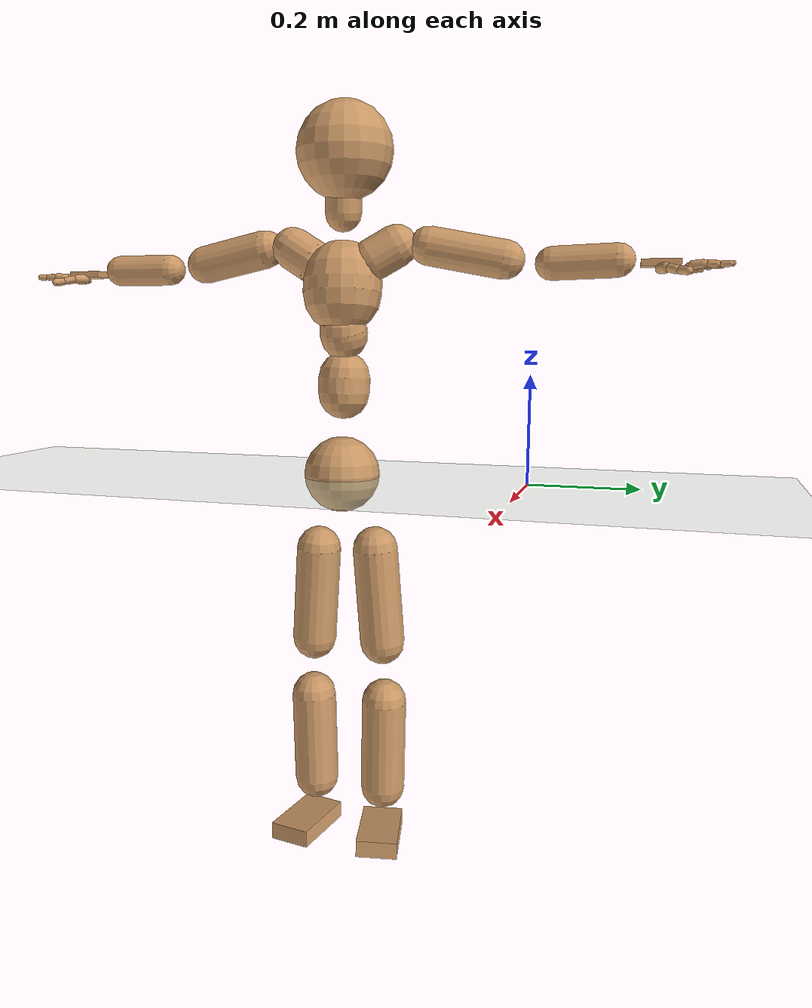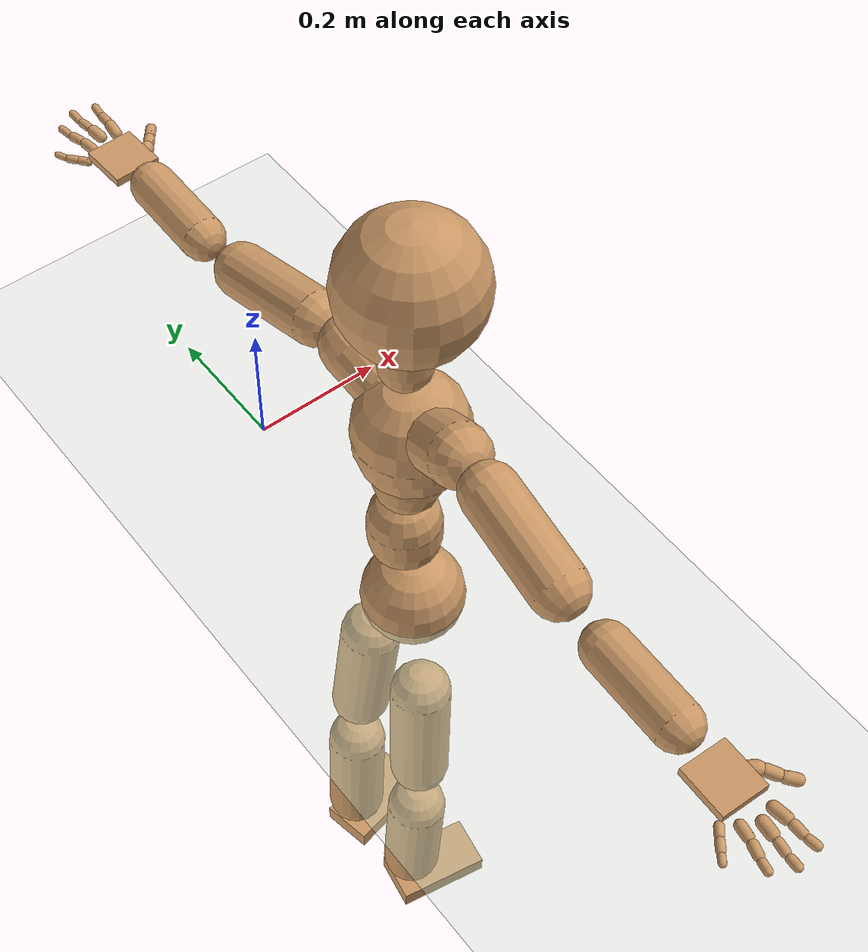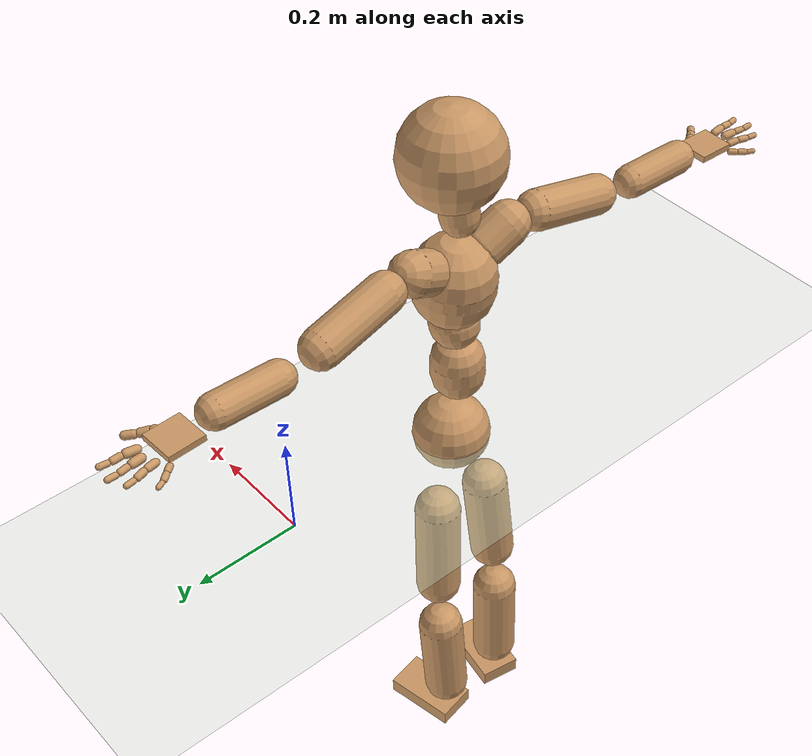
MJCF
<mujoco model="humanoid">
  <compiler coordinate="local" angle="radian"/>
  <default>
    <joint damping="0.0" armature="0.01" stiffness="0.0" limited="true"/>
    <geom conaffinity="1" condim="3" contype="7" margin="0.001" rgba="0.8 0.6 .4 1"/>
  </default>
  <asset>
    <texture type="skybox" builtin="gradient" rgb1=".4 .5 .6" rgb2="0 0 0" width="100" height="100"/>
    <texture builtin="flat" height="1278" mark="cross" markrgb="1 1 1" name="texgeom" random="0.01" rgb1="0.8 0.6 0.4" rgb2="0.8 0.6 0.4" type="cube" width="127"/>
    <texture builtin="checker" height="100" name="texplane" rgb1="0 0 0" rgb2="0.8 0.8 0.8" type="2d" width="100"/>
    <material name="MatPlane" reflectance="0.5" shininess="1" specular="1" texrepeat="60 60" texture="texplane"/>
    <material name="geom" texture="texgeom" texuniform="true"/>
  </asset>
  <worldbody>
    <light cutoff="100" diffuse="1 1 1" dir="-0 0 -1.3" directional="true" exponent="1" pos="0 0 1.3" specular=".1 .1 .1"/>
    <geom conaffinity="1" condim="3" name="floor" pos="0 0 0" rgba="0.8 0.9 0.8 1" size="100 100 .2" type="plane" material="MatPlane"/>
    <body name="Pelvis" pos="0.0001 -0.3612 0.0032">
      <freejoint name="Pelvis"/>
      <geom type="sphere" contype="1" conaffinity="1" density="500" size="0.0738" pos="0.0000 0.0000 0.0000" name="Pelvis"/>
      <body name="L_Hip" pos="-0.0242 0.0558 -0.0867">
        <joint name="L_Hip_x" type="hinge" pos="0 0 0" axis="1 0 0" stiffness="800" damping="80" armature="0.02" range="-180.0000 180.0000"/>
        <joint name="L_Hip_y" type="hinge" pos="0 0 0" axis="0 1 0" stiffness="800" damping="80" armature="0.02" range="-180.0000 180.0000"/>
        <joint name="L_Hip_z" type="hinge" pos="0 0 0" axis="0 0 1" stiffness="800" damping="80" armature="0.02" range="-180.0000 180.0000"/>
        <geom type="capsule" contype="1" conaffinity="1" density="500" fromto="-0.0041 0.0041 -0.0652 -0.0165 0.0163 -0.2606" size="0.0446" name="L_Hip"/>
        <body name="L_Knee" pos="-0.0206 0.0204 -0.3258">
          <joint name="L_Knee_x" type="hinge" pos="0 0 0" axis="1 0 0" stiffness="800" damping="80" armature="0.02" range="-180.0000 180.0000"/>
          <joint name="L_Knee_y" type="hinge" pos="0 0 0" axis="0 1 0" stiffness="800" damping="80" armature="0.02" range="-180.0000 180.0000"/>
          <joint name="L_Knee_z" type="hinge" pos="0 0 0" axis="0 0 1" stiffness="800" damping="80" armature="0.02" range="-180.0000 180.0000"/>
          <geom type="capsule" contype="1" conaffinity="1" density="500" fromto="-0.0028 -0.0016 -0.0632 -0.0114 -0.0065 -0.2526" size="0.0453" name="L_Knee"/>
          <body name="L_Ankle" pos="-0.0142 -0.0082 -0.3158">
            <joint name="L_Ankle_x" type="hinge" pos="0 0 0" axis="1 0 0" stiffness="800" damping="80" armature="0.02" range="-180.0000 180.0000"/>
            <joint name="L_Ankle_y" type="hinge" pos="0 0 0" axis="0 1 0" stiffness="800" damping="80" armature="0.02" range="-180.0000 180.0000"/>
            <joint name="L_Ankle_z" type="hinge" pos="0 0 0" axis="0 0 1" stiffness="800" damping="80" armature="0.02" range="-180.0000 180.0000"/>
            <geom type="box" contype="1" conaffinity="1" density="500" pos="0.0479 0.0092 -0.0183" size="0.0733 0.0409 0.0168" quat="0.9955 0.0000 0.0000 0.0949" name="L_Ankle"/>
            <body name="L_Toe" pos="0.0958 0.0184 -0.0367">
              <joint name="L_Toe_x" type="hinge" pos="0 0 0" axis="1 0 0" stiffness="500" damping="50" armature="0.02" range="-180.0000 180.0000"/>
              <joint name="L_Toe_y" type="hinge" pos="0 0 0" axis="0 1 0" stiffness="500" damping="50" armature="0.02" range="-180.0000 180.0000"/>
              <joint name="L_Toe_z" type="hinge" pos="0 0 0" axis="0 0 1" stiffness="500" damping="50" armature="0.02" range="-180.0000 180.0000"/>
              <geom type="box" contype="1" conaffinity="1" density="500" pos="0.0000 0.0000 0.0206" size="0.0008 0.0021 0.001" quat="0.9947 0.0000 0.0000 0.1028" name="L_Toe"/>
            </body>
          </body>
        </body>
      </body>
      <body name="R_Hip" pos="-0.0257 -0.0547 -0.0939">
        <joint name="R_Hip_x" type="hinge" pos="0 0 0" axis="1 0 0" stiffness="800" damping="80" armature="0.02" range="-180.0000 180.0000"/>
        <joint name="R_Hip_y" type="hinge" pos="0 0 0" axis="0 1 0" stiffness="800" damping="80" armature="0.02" range="-180.0000 180.0000"/>
        <joint name="R_Hip_z" type="hinge" pos="0 0 0" axis="0 0 1" stiffness="800" damping="80" armature="0.02" range="-180.0000 180.0000"/>
        <geom type="capsule" contype="1" conaffinity="1" density="500" fromto="-0.0031 -0.0047 -0.0641 -0.0125 -0.0186 -0.2564" size="0.0443" name="R_Hip"/>
        <body name="R_Knee" pos="-0.0157 -0.0233 -0.3205">
          <joint name="R_Knee_x" type="hinge" pos="0 0 0" axis="1 0 0" stiffness="800" damping="80" armature="0.02" range="-180.0000 180.0000"/>
          <joint name="R_Knee_y" type="hinge" pos="0 0 0" axis="0 1 0" stiffness="800" damping="80" armature="0.02" range="-180.0000 180.0000"/>
          <joint name="R_Knee_z" type="hinge" pos="0 0 0" axis="0 0 1" stiffness="800" damping="80" armature="0.02" range="-180.0000 180.0000"/>
          <geom type="capsule" contype="1" conaffinity="1" density="500" fromto="-0.0019 0.0009 -0.0616 -0.0077 0.0038 -0.2464" size="0.0453" name="R_Knee"/>
          <body name="R_Ankle" pos="-0.0097 0.0047 -0.308">
            <joint name="R_Ankle_x" type="hinge" pos="0 0 0" axis="1 0 0" stiffness="800" damping="80" armature="0.02" range="-180.0000 180.0000"/>
            <joint name="R_Ankle_y" type="hinge" pos="0 0 0" axis="0 1 0" stiffness="800" damping="80" armature="0.02" range="-180.0000 180.0000"/>
            <joint name="R_Ankle_z" type="hinge" pos="0 0 0" axis="0 0 1" stiffness="800" damping="80" armature="0.02" range="-180.0000 180.0000"/>
            <geom type="box" contype="1" conaffinity="1" density="500" pos="0.0447 -0.0077 -0.0204" size="0.0733 0.0409 0.0168" quat="0.9964 0.0000 0.0000 -0.0854" name="R_Ankle"/>
            <body name="R_Toe" pos="0.0893 -0.0154 -0.0408">
              <joint name="R_Toe_x" type="hinge" pos="0 0 0" axis="1 0 0" stiffness="500" damping="50" armature="0.02" range="-180.0000 180.0000"/>
              <joint name="R_Toe_y" type="hinge" pos="0 0 0" axis="0 1 0" stiffness="500" damping="50" armature="0.02" range="-180.0000 180.0000"/>
              <joint name="R_Toe_z" type="hinge" pos="0 0 0" axis="0 0 1" stiffness="500" damping="50" armature="0.02" range="-180.0000 180.0000"/>
              <geom type="box" contype="1" conaffinity="1" density="500" pos="0.0000 0.0000 0.0227" size="0.0008 0.0021 0.001" quat="0.9973 0.0000 0.0000 -0.0729" name="R_Toe"/>
            </body>
          </body>
        </body>
      </body>
      <body name="Torso" pos="-0.0161 -0.0034 0.0965">
        <joint name="Torso_x" type="hinge" pos="0 0 0" axis="1 0 0" stiffness="1000" damping="100" armature="0.02" range="-180.0000 180.0000"/>
        <joint name="Torso_y" type="hinge" pos="0 0 0" axis="0 1 0" stiffness="1000" damping="100" armature="0.02" range="-180.0000 180.0000"/>
        <joint name="Torso_z" type="hinge" pos="0 0 0" axis="0 0 1" stiffness="1000" damping="100" armature="0.02" range="-180.0000 180.0000"/>
        <geom type="capsule" contype="1" conaffinity="1" density="500" fromto="-0.0018 0.0023 0.0911 -0.0012 0.0015 0.0607" size="0.0504" name="Torso"/>
        <body name="Spine" pos="-0.0029 0.0039 0.1518">
          <joint name="Spine_x" type="hinge" pos="0 0 0" axis="1 0 0" stiffness="1000" damping="100" armature="0.02" range="-180.0000 180.0000"/>
          <joint name="Spine_y" type="hinge" pos="0 0 0" axis="0 1 0" stiffness="1000" damping="100" armature="0.02" range="-180.0000 180.0000"/>
          <joint name="Spine_z" type="hinge" pos="0 0 0" axis="0 0 1" stiffness="1000" damping="100" armature="0.02" range="-180.0000 180.0000"/>
          <geom type="capsule" contype="1" conaffinity="1" density="500" fromto="0.0099 -0.0007 0.0297 0.0066 -0.0005 0.0198" size="0.0462" name="Spine"/>
          <body name="Chest" pos="0.0165 -0.0012 0.0496">
            <joint name="Chest_x" type="hinge" pos="0 0 0" axis="1 0 0" stiffness="1000" damping="100" armature="0.02" range="-180.0000 180.0000"/>
            <joint name="Chest_y" type="hinge" pos="0 0 0" axis="0 1 0" stiffness="1000" damping="100" armature="0.02" range="-180.0000 180.0000"/>
            <joint name="Chest_z" type="hinge" pos="0 0 0" axis="0 0 1" stiffness="1000" damping="100" armature="0.02" range="-180.0000 180.0000"/>
            <geom type="capsule" contype="1" conaffinity="1" density="500" fromto="-0.0083 -0.0014 0.0748 -0.0056 -0.0010 0.0498" size="0.0757" name="Chest"/>
            <body name="Neck" pos="-0.0223 -0.0049 0.1712">
              <joint name="Neck_x" type="hinge" pos="0 0 0" axis="1 0 0" stiffness="500" damping="50" armature="0.02" range="-180.0000 180.0000"/>
              <joint name="Neck_y" type="hinge" pos="0 0 0" axis="0 1 0" stiffness="500" damping="50" armature="0.02" range="-180.0000 180.0000"/>
              <joint name="Neck_z" type="hinge" pos="0 0 0" axis="0 0 1" stiffness="500" damping="50" armature="0.02" range="-180.0000 180.0000"/>
              <geom type="capsule" contype="1" conaffinity="1" density="500" fromto="0.0026 0.0016 0.0282 0.0106 0.0063 0.1127" size="0.0348" name="Neck"/>
              <body name="Head" pos="0.0132 0.0079 0.1409">
                <joint name="Head_x" type="hinge" pos="0 0 0" axis="1 0 0" stiffness="500" damping="50" armature="0.02" range="-180.0000 180.0000"/>
                <joint name="Head_y" type="hinge" pos="0 0 0" axis="0 1 0" stiffness="500" damping="50" armature="0.02" range="-180.0000 180.0000"/>
                <joint name="Head_z" type="hinge" pos="0 0 0" axis="0 0 1" stiffness="500" damping="50" armature="0.02" range="-180.0000 180.0000"/>
                <geom type="sphere" contype="1" conaffinity="1" density="500" size="0.0923" pos="0.0000 0.0000 0.0000" name="Head"/>
              </body>
            </body>
            <body name="L_Thorax" pos="-0.0076 0.0427 0.1028">
              <joint name="L_Thorax_x" type="hinge" pos="0 0 0" axis="1 0 0" stiffness="500" damping="50" armature="0.02" range="-180.0000 180.0000"/>
              <joint name="L_Thorax_y" type="hinge" pos="0 0 0" axis="0 1 0" stiffness="500" damping="50" armature="0.02" range="-180.0000 180.0000"/>
              <joint name="L_Thorax_z" type="hinge" pos="0 0 0" axis="0 0 1" stiffness="500" damping="50" armature="0.02" range="-180.0000 180.0000"/>
              <geom type="capsule" contype="1" conaffinity="1" density="500" fromto="-0.0034 0.0146 0.0085 -0.0136 0.0584 0.0339" size="0.0402" name="L_Thorax"/>
              <body name="L_Shoulder" pos="-0.0169 0.073 0.0423">
                <joint name="L_Shoulder_x" type="hinge" pos="0 0 0" axis="1 0 0" stiffness="500" damping="50" armature="0.02" range="-180.0000 180.0000"/>
                <joint name="L_Shoulder_y" type="hinge" pos="0 0 0" axis="0 1 0" stiffness="500" damping="50" armature="0.02" range="-180.0000 180.0000"/>
                <joint name="L_Shoulder_z" type="hinge" pos="0 0 0" axis="0 0 1" stiffness="500" damping="50" armature="0.02" range="-180.0000 180.0000"/>
                <geom type="capsule" contype="1" conaffinity="1" density="500" fromto="-0.0042 0.0468 -0.0092 -0.0169 0.1871 -0.0368" size="0.0367" name="L_Shoulder"/>
                <body name="L_Elbow" pos="-0.0212 0.2338 -0.046">
                  <joint name="L_Elbow_x" type="hinge" pos="0 0 0" axis="1 0 0" stiffness="500" damping="50" armature="0.02" range="-720.0000 720.0000"/>
                  <joint name="L_Elbow_y" type="hinge" pos="0 0 0" axis="0 1 0" stiffness="500" damping="50" armature="0.02" range="-720.0000 720.0000"/>
                  <joint name="L_Elbow_z" type="hinge" pos="0 0 0" axis="0 0 1" stiffness="500" damping="50" armature="0.02" range="-720.0000 720.0000"/>
                  <geom type="capsule" contype="1" conaffinity="1" density="500" fromto="0.0002 0.0386 0.0010 0.0006 0.1545 0.0040" size="0.0308" name="L_Elbow"/>
                  <body name="L_Wrist" pos="0.0008 0.1931 0.005">
                    <joint name="L_Wrist_x" type="hinge" pos="0 0 0" axis="1 0 0" stiffness="300" damping="30" armature="0.02" range="-180.0000 180.0000"/>
                    <joint name="L_Wrist_y" type="hinge" pos="0 0 0" axis="0 1 0" stiffness="300" damping="30" armature="0.02" range="-180.0000 180.0000"/>
                    <joint name="L_Wrist_z" type="hinge" pos="0 0 0" axis="0 0 1" stiffness="300" damping="30" armature="0.02" range="-180.0000 180.0000"/>
                    <geom type="box" contype="1" conaffinity="1" density="500" pos="-0.0016 0.0343 -0.0075" size="0.0338 0.0332 0.0059" quat="0.7233 0.0000 0.0000 -0.6906" name="L_Wrist"/>
                    <body name="L_Index1" pos="0.0186 0.0816 -0.0134">
                      <joint name="L_Index1_x" type="hinge" pos="0 0 0" axis="1 0 0" stiffness="100" damping="10" armature="0.02" range="-180.0000 180.0000"/>
                      <joint name="L_Index1_y" type="hinge" pos="0 0 0" axis="0 1 0" stiffness="100" damping="10" armature="0.02" range="-180.0000 180.0000"/>
                      <joint name="L_Index1_z" type="hinge" pos="0 0 0" axis="0 0 1" stiffness="100" damping="10" armature="0.02" range="-180.0000 180.0000"/>
                      <geom type="capsule" contype="1" conaffinity="1" density="500" fromto="0.0006 0.0057 0.0004 0.0022 0.0227 0.0017" size="0.0078" name="L_Index1"/>
                      <body name="L_Index2" pos="0.0028 0.0284 0.0021">
                        <joint name="L_Index2_x" type="hinge" pos="0 0 0" axis="1 0 0" stiffness="100" damping="10" armature="0.02" range="-180.0000 180.0000"/>
                        <joint name="L_Index2_y" type="hinge" pos="0 0 0" axis="0 1 0" stiffness="100" damping="10" armature="0.02" range="-180.0000 180.0000"/>
                        <joint name="L_Index2_z" type="hinge" pos="0 0 0" axis="0 0 1" stiffness="100" damping="10" armature="0.02" range="-180.0000 180.0000"/>
                        <geom type="capsule" contype="1" conaffinity="1" density="500" fromto="0.0001 0.0041 -0.0003 0.0003 0.0162 -0.0011" size="0.0065" name="L_Index2"/>
                        <body name="L_Index3" pos="0.0004 0.0203 -0.0014">
                          <joint name="L_Index3_x" type="hinge" pos="0 0 0" axis="1 0 0" stiffness="100" damping="10" armature="0.02" range="-180.0000 180.0000"/>
                          <joint name="L_Index3_y" type="hinge" pos="0 0 0" axis="0 1 0" stiffness="100" damping="10" armature="0.02" range="-180.0000 180.0000"/>
                          <joint name="L_Index3_z" type="hinge" pos="0 0 0" axis="0 0 1" stiffness="100" damping="10" armature="0.02" range="-180.0000 180.0000"/>
                          <geom type="capsule" contype="1" conaffinity="1" density="500" fromto="0.0005 0.0045 0.0001 0.0019 0.0178 0.0005" size="0.0055" name="L_Index3"/>
                        </body>
                      </body>
                    </body>
                    <body name="L_Middle1" pos="-0.0009 0.0873 -0.0117">
                      <joint name="L_Middle1_x" type="hinge" pos="0 0 0" axis="1 0 0" stiffness="100" damping="10" armature="0.02" range="-180.0000 180.0000"/>
                      <joint name="L_Middle1_y" type="hinge" pos="0 0 0" axis="0 1 0" stiffness="100" damping="10" armature="0.02" range="-180.0000 180.0000"/>
                      <joint name="L_Middle1_z" type="hinge" pos="0 0 0" axis="0 0 1" stiffness="100" damping="10" armature="0.02" range="-180.0000 180.0000"/>
                      <geom type="capsule" contype="1" conaffinity="1" density="500" fromto="-0.0007 0.0054 0.0002 -0.0027 0.0214 0.0007" size="0.0079" name="L_Middle1"/>
                      <body name="L_Middle2" pos="-0.0034 0.0268 0.0009">
                        <joint name="L_Middle2_x" type="hinge" pos="0 0 0" axis="1 0 0" stiffness="100" damping="10" armature="0.02" range="-180.0000 180.0000"/>
                        <joint name="L_Middle2_y" type="hinge" pos="0 0 0" axis="0 1 0" stiffness="100" damping="10" armature="0.02" range="-180.0000 180.0000"/>
                        <joint name="L_Middle2_z" type="hinge" pos="0 0 0" axis="0 0 1" stiffness="100" damping="10" armature="0.02" range="-180.0000 180.0000"/>
                        <geom type="capsule" contype="1" conaffinity="1" density="500" fromto="-0.0007 0.0042 -0.0001 -0.0027 0.0167 -0.0003" size="0.006" name="L_Middle2"/>
                        <body name="L_Middle3" pos="-0.0034 0.0208 -0.0004">
                          <joint name="L_Middle3_x" type="hinge" pos="0 0 0" axis="1 0 0" stiffness="100" damping="10" armature="0.02" range="-180.0000 180.0000"/>
                          <joint name="L_Middle3_y" type="hinge" pos="0 0 0" axis="0 1 0" stiffness="100" damping="10" armature="0.02" range="-180.0000 180.0000"/>
                          <joint name="L_Middle3_z" type="hinge" pos="0 0 0" axis="0 0 1" stiffness="100" damping="10" armature="0.02" range="-180.0000 180.0000"/>
                          <geom type="capsule" contype="1" conaffinity="1" density="500" fromto="-0.0003 0.0046 0.0003 -0.0011 0.0183 0.0013" size="0.0054" name="L_Middle3"/>
                        </body>
                      </body>
                    </body>
                    <body name="L_Pinky1" pos="-0.0353 0.0652 -0.0175">
                      <joint name="L_Pinky1_x" type="hinge" pos="0 0 0" axis="1 0 0" stiffness="100" damping="10" armature="0.02" range="-180.0000 180.0000"/>
                      <joint name="L_Pinky1_y" type="hinge" pos="0 0 0" axis="0 1 0" stiffness="100" damping="10" armature="0.02" range="-180.0000 180.0000"/>
                      <joint name="L_Pinky1_z" type="hinge" pos="0 0 0" axis="0 0 1" stiffness="100" damping="10" armature="0.02" range="-180.0000 180.0000"/>
                      <geom type="capsule" contype="1" conaffinity="1" density="500" fromto="-0.0021 0.0025 -0.0000 -0.0086 0.0102 -0.0001" size="0.0058" name="L_Pinky1"/>
                      <body name="L_Pinky2" pos="-0.0107 0.0127 -0.0002">
                        <joint name="L_Pinky2_x" type="hinge" pos="0 0 0" axis="1 0 0" stiffness="100" damping="10" armature="0.02" range="-180.0000 180.0000"/>
                        <joint name="L_Pinky2_y" type="hinge" pos="0 0 0" axis="0 1 0" stiffness="100" damping="10" armature="0.02" range="-180.0000 180.0000"/>
                        <joint name="L_Pinky2_z" type="hinge" pos="0 0 0" axis="0 0 1" stiffness="100" damping="10" armature="0.02" range="-180.0000 180.0000"/>
                        <geom type="capsule" contype="1" conaffinity="1" density="500" fromto="-0.0021 0.0027 -0.0001 -0.0084 0.0106 -0.0004" size="0.0057" name="L_Pinky2"/>
                        <body name="L_Pinky3" pos="-0.0105 0.0133 -0.0005">
                          <joint name="L_Pinky3_x" type="hinge" pos="0 0 0" axis="1 0 0" stiffness="100" damping="10" armature="0.02" range="-180.0000 180.0000"/>
                          <joint name="L_Pinky3_y" type="hinge" pos="0 0 0" axis="0 1 0" stiffness="100" damping="10" armature="0.02" range="-180.0000 180.0000"/>
                          <joint name="L_Pinky3_z" type="hinge" pos="0 0 0" axis="0 0 1" stiffness="100" damping="10" armature="0.02" range="-180.0000 180.0000"/>
                          <geom type="capsule" contype="1" conaffinity="1" density="500" fromto="-0.0017 0.0031 0.0003 -0.0068 0.0122 0.0012" size="0.0045" name="L_Pinky3"/>
                        </body>
                      </body>
                    </body>
                    <body name="L_Ring1" pos="-0.0209 0.0765 -0.0135">
                      <joint name="L_Ring1_x" type="hinge" pos="0 0 0" axis="1 0 0" stiffness="100" damping="10" armature="0.02" range="-180.0000 180.0000"/>
                      <joint name="L_Ring1_y" type="hinge" pos="0 0 0" axis="0 1 0" stiffness="100" damping="10" armature="0.02" range="-180.0000 180.0000"/>
                      <joint name="L_Ring1_z" type="hinge" pos="0 0 0" axis="0 0 1" stiffness="100" damping="10" armature="0.02" range="-180.0000 180.0000"/>
                      <geom type="capsule" contype="1" conaffinity="1" density="500" fromto="-0.0009 0.0048 0.0003 -0.0038 0.0192 0.0011" size="0.0069" name="L_Ring1"/>
                      <body name="L_Ring2" pos="-0.0047 0.024 0.0014">
                        <joint name="L_Ring2_x" type="hinge" pos="0 0 0" axis="1 0 0" stiffness="100" damping="10" armature="0.02" range="-180.0000 180.0000"/>
                        <joint name="L_Ring2_y" type="hinge" pos="0 0 0" axis="0 1 0" stiffness="100" damping="10" armature="0.02" range="-180.0000 180.0000"/>
                        <joint name="L_Ring2_z" type="hinge" pos="0 0 0" axis="0 0 1" stiffness="100" damping="10" armature="0.02" range="-180.0000 180.0000"/>
                        <geom type="capsule" contype="1" conaffinity="1" density="500" fromto="-0.0013 0.0040 -0.0001 -0.0050 0.0160 -0.0005" size="0.0065" name="L_Ring2"/>
                        <body name="L_Ring3" pos="-0.0063 0.02 -0.0007">
                          <joint name="L_Ring3_x" type="hinge" pos="0 0 0" axis="1 0 0" stiffness="100" damping="10" armature="0.02" range="-180.0000 180.0000"/>
                          <joint name="L_Ring3_y" type="hinge" pos="0 0 0" axis="0 1 0" stiffness="100" damping="10" armature="0.02" range="-180.0000 180.0000"/>
                          <joint name="L_Ring3_z" type="hinge" pos="0 0 0" axis="0 0 1" stiffness="100" damping="10" armature="0.02" range="-180.0000 180.0000"/>
                          <geom type="capsule" contype="1" conaffinity="1" density="500" fromto="-0.0009 0.0044 0.0003 -0.0034 0.0176 0.0011" size="0.0051" name="L_Ring3"/>
                        </body>
                      </body>
                    </body>
                    <body name="L_Thumb1" pos="0.0227 0.032 -0.0184">
                      <joint name="L_Thumb1_x" type="hinge" pos="0 0 0" axis="1 0 0" stiffness="100" damping="10" armature="0.02" range="-180.0000 180.0000"/>
                      <joint name="L_Thumb1_y" type="hinge" pos="0 0 0" axis="0 1 0" stiffness="100" damping="10" armature="0.02" range="-180.0000 180.0000"/>
                      <joint name="L_Thumb1_z" type="hinge" pos="0 0 0" axis="0 0 1" stiffness="100" damping="10" armature="0.02" range="-180.0000 180.0000"/>
                      <geom type="capsule" contype="1" conaffinity="1" density="500" fromto="0.0042 0.0029 0.0001 0.0169 0.0117 0.0002" size="0.0098" name="L_Thumb1"/>
                      <body name="L_Thumb2" pos="0.0211 0.0146 0.0003">
                        <joint name="L_Thumb2_x" type="hinge" pos="0 0 0" axis="1 0 0" stiffness="100" damping="10" armature="0.02" range="-180.0000 180.0000"/>
                        <joint name="L_Thumb2_y" type="hinge" pos="0 0 0" axis="0 1 0" stiffness="100" damping="10" armature="0.02" range="-180.0000 180.0000"/>
                        <joint name="L_Thumb2_z" type="hinge" pos="0 0 0" axis="0 0 1" stiffness="100" damping="10" armature="0.02" range="-180.0000 180.0000"/>
                        <geom type="capsule" contype="1" conaffinity="1" density="500" fromto="0.0025 0.0036 -0.0010 0.0102 0.0142 -0.0040" size="0.0078" name="L_Thumb2"/>
                        <body name="L_Thumb3" pos="0.0127 0.0178 -0.0051">
                          <joint name="L_Thumb3_x" type="hinge" pos="0 0 0" axis="1 0 0" stiffness="100" damping="10" armature="0.02" range="-180.0000 180.0000"/>
                          <joint name="L_Thumb3_y" type="hinge" pos="0 0 0" axis="0 1 0" stiffness="100" damping="10" armature="0.02" range="-180.0000 180.0000"/>
                          <joint name="L_Thumb3_z" type="hinge" pos="0 0 0" axis="0 0 1" stiffness="100" damping="10" armature="0.02" range="-180.0000 180.0000"/>
                          <geom type="capsule" contype="1" conaffinity="1" density="500" fromto="0.0029 0.0040 -0.0006 0.0118 0.0158 -0.0024" size="0.0074" name="L_Thumb3"/>
                        </body>
                      </body>
                    </body>
                  </body>
                </body>
              </body>
            </body>
            <body name="R_Thorax" pos="-0.0118 -0.045 0.0998">
              <joint name="R_Thorax_x" type="hinge" pos="0 0 0" axis="1 0 0" stiffness="500" damping="50" armature="0.02" range="-180.0000 180.0000"/>
              <joint name="R_Thorax_y" type="hinge" pos="0 0 0" axis="0 1 0" stiffness="500" damping="50" armature="0.02" range="-180.0000 180.0000"/>
              <joint name="R_Thorax_z" type="hinge" pos="0 0 0" axis="0 0 1" stiffness="500" damping="50" armature="0.02" range="-180.0000 180.0000"/>
              <geom type="capsule" contype="1" conaffinity="1" density="500" fromto="-0.0026 -0.0156 0.0093 -0.0103 -0.0623 0.0373" size="0.041" name="R_Thorax"/>
              <body name="R_Shoulder" pos="-0.0129 -0.0779 0.0466">
                <joint name="R_Shoulder_x" type="hinge" pos="0 0 0" axis="1 0 0" stiffness="500" damping="50" armature="0.02" range="-180.0000 180.0000"/>
                <joint name="R_Shoulder_y" type="hinge" pos="0 0 0" axis="0 1 0" stiffness="500" damping="50" armature="0.02" range="-180.0000 180.0000"/>
                <joint name="R_Shoulder_z" type="hinge" pos="0 0 0" axis="0 0 1" stiffness="500" damping="50" armature="0.02" range="-180.0000 180.0000"/>
                <geom type="capsule" contype="1" conaffinity="1" density="500" fromto="-0.0030 -0.0450 -0.0088 -0.0120 -0.1799 -0.0351" size="0.037" name="R_Shoulder"/>
                <body name="R_Elbow" pos="-0.015 -0.2248 -0.0438">
                  <joint name="R_Elbow_x" type="hinge" pos="0 0 0" axis="1 0 0" stiffness="500" damping="50" armature="0.02" range="-720.0000 720.0000"/>
                  <joint name="R_Elbow_y" type="hinge" pos="0 0 0" axis="0 1 0" stiffness="500" damping="50" armature="0.02" range="-720.0000 720.0000"/>
                  <joint name="R_Elbow_z" type="hinge" pos="0 0 0" axis="0 0 1" stiffness="500" damping="50" armature="0.02" range="-720.0000 720.0000"/>
                  <geom type="capsule" contype="1" conaffinity="1" density="500" fromto="-0.0013 -0.0389 0.0002 -0.0050 -0.1554 0.0007" size="0.031" name="R_Elbow"/>
                  <body name="R_Wrist" pos="-0.0063 -0.1943 0.0009">
                    <joint name="R_Wrist_x" type="hinge" pos="0 0 0" axis="1 0 0" stiffness="300" damping="30" armature="0.02" range="-180.0000 180.0000"/>
                    <joint name="R_Wrist_y" type="hinge" pos="0 0 0" axis="0 1 0" stiffness="300" damping="30" armature="0.02" range="-180.0000 180.0000"/>
                    <joint name="R_Wrist_z" type="hinge" pos="0 0 0" axis="0 0 1" stiffness="300" damping="30" armature="0.02" range="-180.0000 180.0000"/>
                    <geom type="box" contype="1" conaffinity="1" density="500" pos="-0.0011 -0.0339 -0.0071" size="0.0338 0.0314 0.0061" quat="0.7181 0.0000 0.0000 0.6960" name="R_Wrist"/>
                    <body name="R_Index1" pos="0.0197 -0.0809 -0.0127">
                      <joint name="R_Index1_x" type="hinge" pos="0 0 0" axis="1 0 0" stiffness="100" damping="10" armature="0.02" range="-180.0000 180.0000"/>
                      <joint name="R_Index1_y" type="hinge" pos="0 0 0" axis="0 1 0" stiffness="100" damping="10" armature="0.02" range="-180.0000 180.0000"/>
                      <joint name="R_Index1_z" type="hinge" pos="0 0 0" axis="0 0 1" stiffness="100" damping="10" armature="0.02" range="-180.0000 180.0000"/>
                      <geom type="capsule" contype="1" conaffinity="1" density="500" fromto="0.0006 -0.0057 0.0004 0.0022 -0.0227 0.0017" size="0.0078" name="R_Index1"/>
                      <body name="R_Index2" pos="0.0028 -0.0284 0.0021">
                        <joint name="R_Index2_x" type="hinge" pos="0 0 0" axis="1 0 0" stiffness="100" damping="10" armature="0.02" range="-180.0000 180.0000"/>
                        <joint name="R_Index2_y" type="hinge" pos="0 0 0" axis="0 1 0" stiffness="100" damping="10" armature="0.02" range="-180.0000 180.0000"/>
                        <joint name="R_Index2_z" type="hinge" pos="0 0 0" axis="0 0 1" stiffness="100" damping="10" armature="0.02" range="-180.0000 180.0000"/>
                        <geom type="capsule" contype="1" conaffinity="1" density="500" fromto="0.0001 -0.0041 -0.0003 0.0003 -0.0162 -0.0011" size="0.0065" name="R_Index2"/>
                        <body name="R_Index3" pos="0.0004 -0.0203 -0.0014">
                          <joint name="R_Index3_x" type="hinge" pos="0 0 0" axis="1 0 0" stiffness="100" damping="10" armature="0.02" range="-180.0000 180.0000"/>
                          <joint name="R_Index3_y" type="hinge" pos="0 0 0" axis="0 1 0" stiffness="100" damping="10" armature="0.02" range="-180.0000 180.0000"/>
                          <joint name="R_Index3_z" type="hinge" pos="0 0 0" axis="0 0 1" stiffness="100" damping="10" armature="0.02" range="-180.0000 180.0000"/>
                          <geom type="capsule" contype="1" conaffinity="1" density="500" fromto="0.0005 -0.0037 0.0001 0.0019 -0.0146 0.0005" size="0.0058" name="R_Index3"/>
                        </body>
                      </body>
                    </body>
                    <body name="R_Middle1" pos="0.0001 -0.0866 -0.0111">
                      <joint name="R_Middle1_x" type="hinge" pos="0 0 0" axis="1 0 0" stiffness="100" damping="10" armature="0.02" range="-180.0000 180.0000"/>
                      <joint name="R_Middle1_y" type="hinge" pos="0 0 0" axis="0 1 0" stiffness="100" damping="10" armature="0.02" range="-180.0000 180.0000"/>
                      <joint name="R_Middle1_z" type="hinge" pos="0 0 0" axis="0 0 1" stiffness="100" damping="10" armature="0.02" range="-180.0000 180.0000"/>
                      <geom type="capsule" contype="1" conaffinity="1" density="500" fromto="-0.0007 -0.0054 0.0002 -0.0027 -0.0214 0.0007" size="0.0079" name="R_Middle1"/>
                      <body name="R_Middle2" pos="-0.0034 -0.0268 0.0009">
                        <joint name="R_Middle2_x" type="hinge" pos="0 0 0" axis="1 0 0" stiffness="100" damping="10" armature="0.02" range="-180.0000 180.0000"/>
                        <joint name="R_Middle2_y" type="hinge" pos="0 0 0" axis="0 1 0" stiffness="100" damping="10" armature="0.02" range="-180.0000 180.0000"/>
                        <joint name="R_Middle2_z" type="hinge" pos="0 0 0" axis="0 0 1" stiffness="100" damping="10" armature="0.02" range="-180.0000 180.0000"/>
                        <geom type="capsule" contype="1" conaffinity="1" density="500" fromto="-0.0007 -0.0042 -0.0001 -0.0027 -0.0167 -0.0003" size="0.006" name="R_Middle2"/>
                        <body name="R_Middle3" pos="-0.0034 -0.0208 -0.0004">
                          <joint name="R_Middle3_x" type="hinge" pos="0 0 0" axis="1 0 0" stiffness="100" damping="10" armature="0.02" range="-180.0000 180.0000"/>
                          <joint name="R_Middle3_y" type="hinge" pos="0 0 0" axis="0 1 0" stiffness="100" damping="10" armature="0.02" range="-180.0000 180.0000"/>
                          <joint name="R_Middle3_z" type="hinge" pos="0 0 0" axis="0 0 1" stiffness="100" damping="10" armature="0.02" range="-180.0000 180.0000"/>
                          <geom type="capsule" contype="1" conaffinity="1" density="500" fromto="-0.0003 -0.0038 0.0003 -0.0011 -0.0151 0.0013" size="0.0057" name="R_Middle3"/>
                        </body>
                      </body>
                    </body>
                    <body name="R_Pinky1" pos="-0.0343 -0.0645 -0.0168">
                      <joint name="R_Pinky1_x" type="hinge" pos="0 0 0" axis="1 0 0" stiffness="100" damping="10" armature="0.02" range="-180.0000 180.0000"/>
                      <joint name="R_Pinky1_y" type="hinge" pos="0 0 0" axis="0 1 0" stiffness="100" damping="10" armature="0.02" range="-180.0000 180.0000"/>
                      <joint name="R_Pinky1_z" type="hinge" pos="0 0 0" axis="0 0 1" stiffness="100" damping="10" armature="0.02" range="-180.0000 180.0000"/>
                      <geom type="capsule" contype="1" conaffinity="1" density="500" fromto="-0.0021 -0.0025 -0.0000 -0.0086 -0.0102 -0.0001" size="0.0058" name="R_Pinky1"/>
                      <body name="R_Pinky2" pos="-0.0107 -0.0127 -0.0002">
                        <joint name="R_Pinky2_x" type="hinge" pos="0 0 0" axis="1 0 0" stiffness="100" damping="10" armature="0.02" range="-180.0000 180.0000"/>
                        <joint name="R_Pinky2_y" type="hinge" pos="0 0 0" axis="0 1 0" stiffness="100" damping="10" armature="0.02" range="-180.0000 180.0000"/>
                        <joint name="R_Pinky2_z" type="hinge" pos="0 0 0" axis="0 0 1" stiffness="100" damping="10" armature="0.02" range="-180.0000 180.0000"/>
                        <geom type="capsule" contype="1" conaffinity="1" density="500" fromto="-0.0021 -0.0027 -0.0001 -0.0084 -0.0106 -0.0004" size="0.0057" name="R_Pinky2"/>
                        <body name="R_Pinky3" pos="-0.0105 -0.0133 -0.0005">
                          <joint name="R_Pinky3_x" type="hinge" pos="0 0 0" axis="1 0 0" stiffness="100" damping="10" armature="0.02" range="-180.0000 180.0000"/>
                          <joint name="R_Pinky3_y" type="hinge" pos="0 0 0" axis="0 1 0" stiffness="100" damping="10" armature="0.02" range="-180.0000 180.0000"/>
                          <joint name="R_Pinky3_z" type="hinge" pos="0 0 0" axis="0 0 1" stiffness="100" damping="10" armature="0.02" range="-180.0000 180.0000"/>
                          <geom type="capsule" contype="1" conaffinity="1" density="500" fromto="-0.0017 -0.0023 0.0003 -0.0068 -0.0090 0.0012" size="0.0047" name="R_Pinky3"/>
                        </body>
                      </body>
                    </body>
                    <body name="R_Ring1" pos="-0.0198 -0.0758 -0.0128">
                      <joint name="R_Ring1_x" type="hinge" pos="0 0 0" axis="1 0 0" stiffness="100" damping="10" armature="0.02" range="-180.0000 180.0000"/>
                      <joint name="R_Ring1_y" type="hinge" pos="0 0 0" axis="0 1 0" stiffness="100" damping="10" armature="0.02" range="-180.0000 180.0000"/>
                      <joint name="R_Ring1_z" type="hinge" pos="0 0 0" axis="0 0 1" stiffness="100" damping="10" armature="0.02" range="-180.0000 180.0000"/>
                      <geom type="capsule" contype="1" conaffinity="1" density="500" fromto="-0.0009 -0.0048 0.0003 -0.0038 -0.0192 0.0011" size="0.0069" name="R_Ring1"/>
                      <body name="R_Ring2" pos="-0.0047 -0.024 0.0014">
                        <joint name="R_Ring2_x" type="hinge" pos="0 0 0" axis="1 0 0" stiffness="100" damping="10" armature="0.02" range="-180.0000 180.0000"/>
                        <joint name="R_Ring2_y" type="hinge" pos="0 0 0" axis="0 1 0" stiffness="100" damping="10" armature="0.02" range="-180.0000 180.0000"/>
                        <joint name="R_Ring2_z" type="hinge" pos="0 0 0" axis="0 0 1" stiffness="100" damping="10" armature="0.02" range="-180.0000 180.0000"/>
                        <geom type="capsule" contype="1" conaffinity="1" density="500" fromto="-0.0013 -0.0040 -0.0001 -0.0050 -0.0160 -0.0005" size="0.0065" name="R_Ring2"/>
                        <body name="R_Ring3" pos="-0.0063 -0.02 -0.0007">
                          <joint name="R_Ring3_x" type="hinge" pos="0 0 0" axis="1 0 0" stiffness="100" damping="10" armature="0.02" range="-180.0000 180.0000"/>
                          <joint name="R_Ring3_y" type="hinge" pos="0 0 0" axis="0 1 0" stiffness="100" damping="10" armature="0.02" range="-180.0000 180.0000"/>
                          <joint name="R_Ring3_z" type="hinge" pos="0 0 0" axis="0 0 1" stiffness="100" damping="10" armature="0.02" range="-180.0000 180.0000"/>
                          <geom type="capsule" contype="1" conaffinity="1" density="500" fromto="-0.0009 -0.0036 0.0003 -0.0034 -0.0144 0.0011" size="0.0054" name="R_Ring3"/>
                        </body>
                      </body>
                    </body>
                    <body name="R_Thumb1" pos="0.0237 -0.0313 -0.0178">
                      <joint name="R_Thumb1_x" type="hinge" pos="0 0 0" axis="1 0 0" stiffness="100" damping="10" armature="0.02" range="-180.0000 180.0000"/>
                      <joint name="R_Thumb1_y" type="hinge" pos="0 0 0" axis="0 1 0" stiffness="100" damping="10" armature="0.02" range="-180.0000 180.0000"/>
                      <joint name="R_Thumb1_z" type="hinge" pos="0 0 0" axis="0 0 1" stiffness="100" damping="10" armature="0.02" range="-180.0000 180.0000"/>
                      <geom type="capsule" contype="1" conaffinity="1" density="500" fromto="0.0042 -0.0029 0.0001 0.0169 -0.0117 0.0002" size="0.0098" name="R_Thumb1"/>
                      <body name="R_Thumb2" pos="0.0211 -0.0146 0.0003">
                        <joint name="R_Thumb2_x" type="hinge" pos="0 0 0" axis="1 0 0" stiffness="100" damping="10" armature="0.02" range="-180.0000 180.0000"/>
                        <joint name="R_Thumb2_y" type="hinge" pos="0 0 0" axis="0 1 0" stiffness="100" damping="10" armature="0.02" range="-180.0000 180.0000"/>
                        <joint name="R_Thumb2_z" type="hinge" pos="0 0 0" axis="0 0 1" stiffness="100" damping="10" armature="0.02" range="-180.0000 180.0000"/>
                        <geom type="capsule" contype="1" conaffinity="1" density="500" fromto="0.0025 -0.0036 -0.0010 0.0102 -0.0142 -0.0040" size="0.0078" name="R_Thumb2"/>
                        <body name="R_Thumb3" pos="0.0127 -0.0178 -0.0051">
                          <joint name="R_Thumb3_x" type="hinge" pos="0 0 0" axis="1 0 0" stiffness="100" damping="10" armature="0.02" range="-180.0000 180.0000"/>
                          <joint name="R_Thumb3_y" type="hinge" pos="0 0 0" axis="0 1 0" stiffness="100" damping="10" armature="0.02" range="-180.0000 180.0000"/>
                          <joint name="R_Thumb3_z" type="hinge" pos="0 0 0" axis="0 0 1" stiffness="100" damping="10" armature="0.02" range="-180.0000 180.0000"/>
                          <geom type="capsule" contype="1" conaffinity="1" density="500" fromto="0.0029 -0.0032 -0.0006 0.0118 -0.0126 -0.0024" size="0.0076" name="R_Thumb3"/>
                        </body>
                      </body>
                    </body>
                  </body>
                </body>
              </body>
            </body>
          </body>
        </body>
      </body>
    </body>
  </worldbody>
  <actuator>
    <motor name="L_Hip_x" joint="L_Hip_x" gear="500"/>
    <motor name="L_Hip_y" joint="L_Hip_y" gear="500"/>
    <motor name="L_Hip_z" joint="L_Hip_z" gear="500"/>
    <motor name="L_Knee_x" joint="L_Knee_x" gear="500"/>
    <motor name="L_Knee_y" joint="L_Knee_y" gear="500"/>
    <motor name="L_Knee_z" joint="L_Knee_z" gear="500"/>
    <motor name="L_Ankle_x" joint="L_Ankle_x" gear="500"/>
    <motor name="L_Ankle_y" joint="L_Ankle_y" gear="500"/>
    <motor name="L_Ankle_z" joint="L_Ankle_z" gear="500"/>
    <motor name="L_Toe_x" joint="L_Toe_x" gear="500"/>
    <motor name="L_Toe_y" joint="L_Toe_y" gear="500"/>
    <motor name="L_Toe_z" joint="L_Toe_z" gear="500"/>
    <motor name="R_Hip_x" joint="R_Hip_x" gear="500"/>
    <motor name="R_Hip_y" joint="R_Hip_y" gear="500"/>
    <motor name="R_Hip_z" joint="R_Hip_z" gear="500"/>
    <motor name="R_Knee_x" joint="R_Knee_x" gear="500"/>
    <motor name="R_Knee_y" joint="R_Knee_y" gear="500"/>
    <motor name="R_Knee_z" joint="R_Knee_z" gear="500"/>
    <motor name="R_Ankle_x" joint="R_Ankle_x" gear="500"/>
    <motor name="R_Ankle_y" joint="R_Ankle_y" gear="500"/>
    <motor name="R_Ankle_z" joint="R_Ankle_z" gear="500"/>
    <motor name="R_Toe_x" joint="R_Toe_x" gear="500"/>
    <motor name="R_Toe_y" joint="R_Toe_y" gear="500"/>
    <motor name="R_Toe_z" joint="R_Toe_z" gear="500"/>
    <motor name="Torso_x" joint="Torso_x" gear="500"/>
    <motor name="Torso_y" joint="Torso_y" gear="500"/>
    <motor name="Torso_z" joint="Torso_z" gear="500"/>
    <motor name="Spine_x" joint="Spine_x" gear="500"/>
    <motor name="Spine_y" joint="Spine_y" gear="500"/>
    <motor name="Spine_z" joint="Spine_z" gear="500"/>
    <motor name="Chest_x" joint="Chest_x" gear="500"/>
    <motor name="Chest_y" joint="Chest_y" gear="500"/>
    <motor name="Chest_z" joint="Chest_z" gear="500"/>
    <motor name="Neck_x" joint="Neck_x" gear="500"/>
    <motor name="Neck_y" joint="Neck_y" gear="500"/>
    <motor name="Neck_z" joint="Neck_z" gear="500"/>
    <motor name="Head_x" joint="Head_x" gear="500"/>
    <motor name="Head_y" joint="Head_y" gear="500"/>
    <motor name="Head_z" joint="Head_z" gear="500"/>
    <motor name="L_Thorax_x" joint="L_Thorax_x" gear="500"/>
    <motor name="L_Thorax_y" joint="L_Thorax_y" gear="500"/>
    <motor name="L_Thorax_z" joint="L_Thorax_z" gear="500"/>
    <motor name="L_Shoulder_x" joint="L_Shoulder_x" gear="500"/>
    <motor name="L_Shoulder_y" joint="L_Shoulder_y" gear="500"/>
    <motor name="L_Shoulder_z" joint="L_Shoulder_z" gear="500"/>
    <motor name="L_Elbow_x" joint="L_Elbow_x" gear="500"/>
    <motor name="L_Elbow_y" joint="L_Elbow_y" gear="500"/>
    <motor name="L_Elbow_z" joint="L_Elbow_z" gear="500"/>
    <motor name="L_Wrist_x" joint="L_Wrist_x" gear="500"/>
    <motor name="L_Wrist_y" joint="L_Wrist_y" gear="500"/>
    <motor name="L_Wrist_z" joint="L_Wrist_z" gear="500"/>
    <motor name="L_Index1_x" joint="L_Index1_x" gear="500"/>
    <motor name="L_Index1_y" joint="L_Index1_y" gear="500"/>
    <motor name="L_Index1_z" joint="L_Index1_z" gear="500"/>
    <motor name="L_Index2_x" joint="L_Index2_x" gear="500"/>
    <motor name="L_Index2_y" joint="L_Index2_y" gear="500"/>
    <motor name="L_Index2_z" joint="L_Index2_z" gear="500"/>
    <motor name="L_Index3_x" joint="L_Index3_x" gear="500"/>
    <motor name="L_Index3_y" joint="L_Index3_y" gear="500"/>
    <motor name="L_Index3_z" joint="L_Index3_z" gear="500"/>
    <motor name="L_Middle1_x" joint="L_Middle1_x" gear="500"/>
    <motor name="L_Middle1_y" joint="L_Middle1_y" gear="500"/>
    <motor name="L_Middle1_z" joint="L_Middle1_z" gear="500"/>
    <motor name="L_Middle2_x" joint="L_Middle2_x" gear="500"/>
    <motor name="L_Middle2_y" joint="L_Middle2_y" gear="500"/>
    <motor name="L_Middle2_z" joint="L_Middle2_z" gear="500"/>
    <motor name="L_Middle3_x" joint="L_Middle3_x" gear="500"/>
    <motor name="L_Middle3_y" joint="L_Middle3_y" gear="500"/>
    <motor name="L_Middle3_z" joint="L_Middle3_z" gear="500"/>
    <motor name="L_Pinky1_x" joint="L_Pinky1_x" gear="500"/>
    <motor name="L_Pinky1_y" joint="L_Pinky1_y" gear="500"/>
    <motor name="L_Pinky1_z" joint="L_Pinky1_z" gear="500"/>
    <motor name="L_Pinky2_x" joint="L_Pinky2_x" gear="500"/>
    <motor name="L_Pinky2_y" joint="L_Pinky2_y" gear="500"/>
    <motor name="L_Pinky2_z" joint="L_Pinky2_z" gear="500"/>
    <motor name="L_Pinky3_x" joint="L_Pinky3_x" gear="500"/>
    <motor name="L_Pinky3_y" joint="L_Pinky3_y" gear="500"/>
    <motor name="L_Pinky3_z" joint="L_Pinky3_z" gear="500"/>
    <motor name="L_Ring1_x" joint="L_Ring1_x" gear="500"/>
    <motor name="L_Ring1_y" joint="L_Ring1_y" gear="500"/>
    <motor name="L_Ring1_z" joint="L_Ring1_z" gear="500"/>
    <motor name="L_Ring2_x" joint="L_Ring2_x" gear="500"/>
    <motor name="L_Ring2_y" joint="L_Ring2_y" gear="500"/>
    <motor name="L_Ring2_z" joint="L_Ring2_z" gear="500"/>
    <motor name="L_Ring3_x" joint="L_Ring3_x" gear="500"/>
    <motor name="L_Ring3_y" joint="L_Ring3_y" gear="500"/>
    <motor name="L_Ring3_z" joint="L_Ring3_z" gear="500"/>
    <motor name="L_Thumb1_x" joint="L_Thumb1_x" gear="500"/>
    <motor name="L_Thumb1_y" joint="L_Thumb1_y" gear="500"/>
    <motor name="L_Thumb1_z" joint="L_Thumb1_z" gear="500"/>
    <motor name="L_Thumb2_x" joint="L_Thumb2_x" gear="500"/>
    <motor name="L_Thumb2_y" joint="L_Thumb2_y" gear="500"/>
    <motor name="L_Thumb2_z" joint="L_Thumb2_z" gear="500"/>
    <motor name="L_Thumb3_x" joint="L_Thumb3_x" gear="500"/>
    <motor name="L_Thumb3_y" joint="L_Thumb3_y" gear="500"/>
    <motor name="L_Thumb3_z" joint="L_Thumb3_z" gear="500"/>
    <motor name="R_Thorax_x" joint="R_Thorax_x" gear="500"/>
    <motor name="R_Thorax_y" joint="R_Thorax_y" gear="500"/>
    <motor name="R_Thorax_z" joint="R_Thorax_z" gear="500"/>
    <motor name="R_Shoulder_x" joint="R_Shoulder_x" gear="500"/>
    <motor name="R_Shoulder_y" joint="R_Shoulder_y" gear="500"/>
    <motor name="R_Shoulder_z" joint="R_Shoulder_z" gear="500"/>
    <motor name="R_Elbow_x" joint="R_Elbow_x" gear="500"/>
    <motor name="R_Elbow_y" joint="R_Elbow_y" gear="500"/>
    <motor name="R_Elbow_z" joint="R_Elbow_z" gear="500"/>
    <motor name="R_Wrist_x" joint="R_Wrist_x" gear="500"/>
    <motor name="R_Wrist_y" joint="R_Wrist_y" gear="500"/>
    <motor name="R_Wrist_z" joint="R_Wrist_z" gear="500"/>
    <motor name="R_Index1_x" joint="R_Index1_x" gear="500"/>
    <motor name="R_Index1_y" joint="R_Index1_y" gear="500"/>
    <motor name="R_Index1_z" joint="R_Index1_z" gear="500"/>
    <motor name="R_Index2_x" joint="R_Index2_x" gear="500"/>
    <motor name="R_Index2_y" joint="R_Index2_y" gear="500"/>
    <motor name="R_Index2_z" joint="R_Index2_z" gear="500"/>
    <motor name="R_Index3_x" joint="R_Index3_x" gear="500"/>
    <motor name="R_Index3_y" joint="R_Index3_y" gear="500"/>
    <motor name="R_Index3_z" joint="R_Index3_z" gear="500"/>
    <motor name="R_Middle1_x" joint="R_Middle1_x" gear="500"/>
    <motor name="R_Middle1_y" joint="R_Middle1_y" gear="500"/>
    <motor name="R_Middle1_z" joint="R_Middle1_z" gear="500"/>
    <motor name="R_Middle2_x" joint="R_Middle2_x" gear="500"/>
    <motor name="R_Middle2_y" joint="R_Middle2_y" gear="500"/>
    <motor name="R_Middle2_z" joint="R_Middle2_z" gear="500"/>
    <motor name="R_Middle3_x" joint="R_Middle3_x" gear="500"/>
    <motor name="R_Middle3_y" joint="R_Middle3_y" gear="500"/>
    <motor name="R_Middle3_z" joint="R_Middle3_z" gear="500"/>
    <motor name="R_Pinky1_x" joint="R_Pinky1_x" gear="500"/>
    <motor name="R_Pinky1_y" joint="R_Pinky1_y" gear="500"/>
    <motor name="R_Pinky1_z" joint="R_Pinky1_z" gear="500"/>
    <motor name="R_Pinky2_x" joint="R_Pinky2_x" gear="500"/>
    <motor name="R_Pinky2_y" joint="R_Pinky2_y" gear="500"/>
    <motor name="R_Pinky2_z" joint="R_Pinky2_z" gear="500"/>
    <motor name="R_Pinky3_x" joint="R_Pinky3_x" gear="500"/>
    <motor name="R_Pinky3_y" joint="R_Pinky3_y" gear="500"/>
    <motor name="R_Pinky3_z" joint="R_Pinky3_z" gear="500"/>
    <motor name="R_Ring1_x" joint="R_Ring1_x" gear="500"/>
    <motor name="R_Ring1_y" joint="R_Ring1_y" gear="500"/>
    <motor name="R_Ring1_z" joint="R_Ring1_z" gear="500"/>
    <motor name="R_Ring2_x" joint="R_Ring2_x" gear="500"/>
    <motor name="R_Ring2_y" joint="R_Ring2_y" gear="500"/>
    <motor name="R_Ring2_z" joint="R_Ring2_z" gear="500"/>
    <motor name="R_Ring3_x" joint="R_Ring3_x" gear="500"/>
    <motor name="R_Ring3_y" joint="R_Ring3_y" gear="500"/>
    <motor name="R_Ring3_z" joint="R_Ring3_z" gear="500"/>
    <motor name="R_Thumb1_x" joint="R_Thumb1_x" gear="500"/>
    <motor name="R_Thumb1_y" joint="R_Thumb1_y" gear="500"/>
    <motor name="R_Thumb1_z" joint="R_Thumb1_z" gear="500"/>
    <motor name="R_Thumb2_x" joint="R_Thumb2_x" gear="500"/>
    <motor name="R_Thumb2_y" joint="R_Thumb2_y" gear="500"/>
    <motor name="R_Thumb2_z" joint="R_Thumb2_z" gear="500"/>
    <motor name="R_Thumb3_x" joint="R_Thumb3_x" gear="500"/>
    <motor name="R_Thumb3_y" joint="R_Thumb3_y" gear="500"/>
    <motor name="R_Thumb3_z" joint="R_Thumb3_z" gear="500"/>
  </actuator>
  <contact>
    <exclude body1="Torso" body2="Chest"/>
    <exclude body1="Head" body2="Chest"/>
    <exclude body1="R_Knee" body2="R_Toe"/>
    <exclude body1="R_Knee" body2="L_Ankle"/>
    <exclude body1="R_Knee" body2="L_Toe"/>
    <exclude body1="L_Knee" body2="L_Toe"/>
    <exclude body1="L_Knee" body2="R_Ankle"/>
    <exclude body1="L_Knee" body2="R_Toe"/>
    <exclude body1="L_Shoulder" body2="Chest"/>
    <exclude body1="R_Shoulder" body2="Chest"/>
  </contact>
  <sensor/>
  <size njmax="700" nconmax="700"/>
</mujoco>
